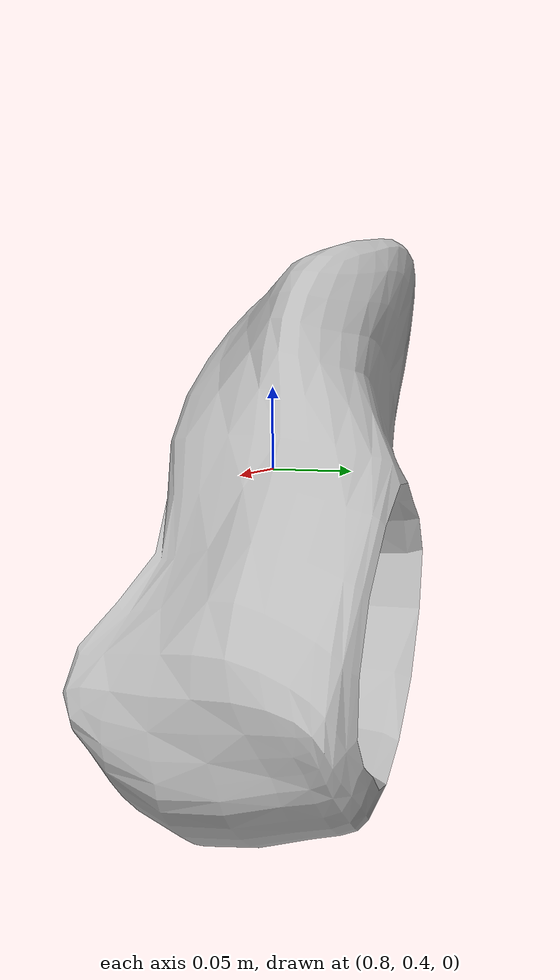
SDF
<?xml version="1.0" ?>
<sdf version="1.4">
  <model name="shelf1_shoes1">
    <link name="body">
      <pose>0 0 0 0 0 0</pose>
      <inertial>
        <pose>   0.921380   0.457312  -0.022750 0 0 0</pose>
        <mass>0.5</mass>
        <inertia>
          <ixx>0.01</ixx>
          <ixy>0</ixy>
          <ixz>0</ixz>
          <iyy>0.01</iyy>
          <iyz>0</iyz>
          <izz>0.01</izz>
        </inertia>
      </inertial>
      <collision name="collision">
        <geometry>
          <mesh>
            <uri>model://bookshelf/shelf1_items/shoes1/shoes1.dae</uri>
          </mesh>
        </geometry>
      </collision>
      <visual name="visual">
        <geometry>
          <mesh>
            <uri>model://bookshelf/shelf1_items/shoes1/shoes1.dae</uri>
          </mesh>
        </geometry>
      </visual>
    </link>
  </model>
</sdf>
